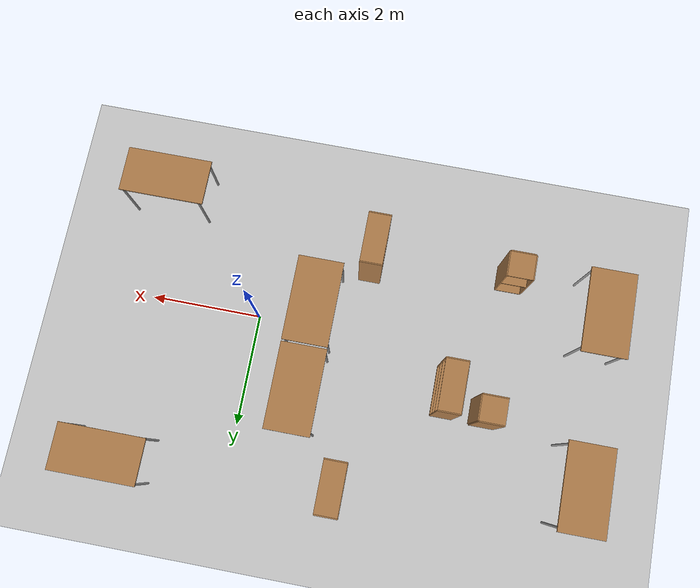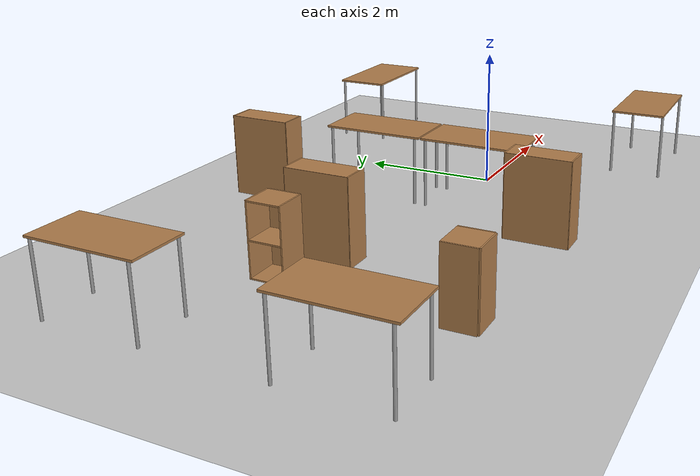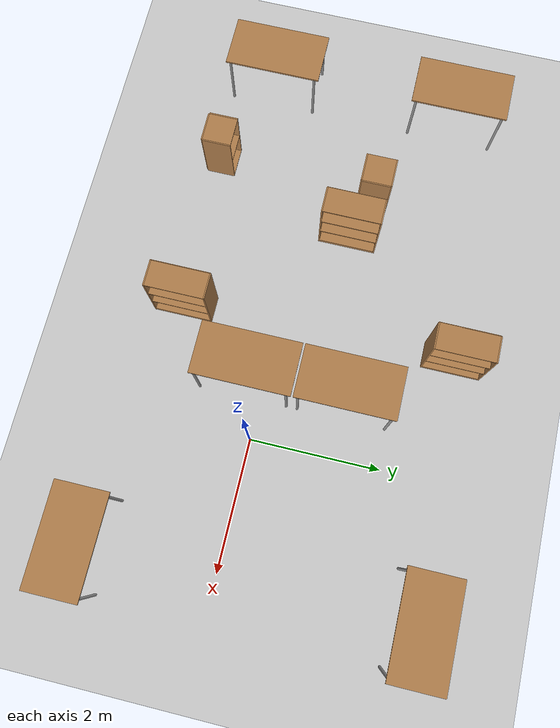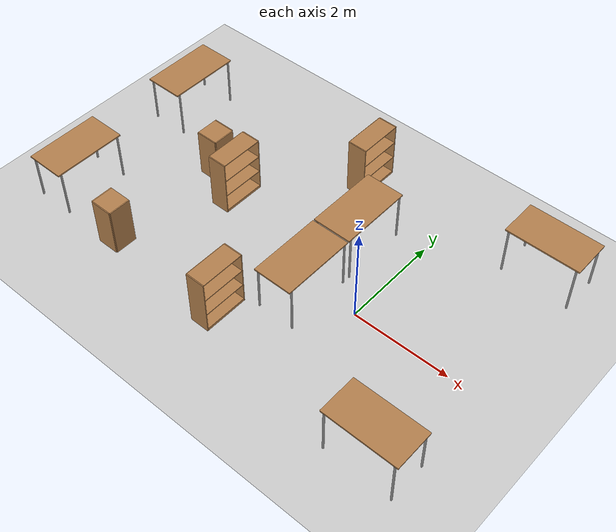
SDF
<sdf version="1.5">
 <world name="default">
  <model name="ground_plane">
   <static>1</static>
   <link name="link">
    <collision name="collision">
     <geometry><plane><normal>0 0 1</normal><size>100 100</size></plane></geometry>
     <surface><friction><ode><mu>100</mu><mu2>50</mu2></ode></friction></surface>
    </collision>
    <visual name="visual">
     <cast_shadows>0</cast_shadows>
     <geometry><plane><normal>0 0 1</normal><size>100 100</size></plane></geometry>
     <material>
      <script><uri>file://media/materials/scripts/gazebo.material</uri><name>Gazebo/Grey</name></script>
     </material>
    </visual>
    <velocity_decay><linear>0</linear><angular>0</angular></velocity_decay>
   </link>
  </model>
  <model name="table">
   <static>1</static>
   <link name="link">
    <collision name="surface">
     <pose>0 0 1 0 -0 0</pose>
     <geometry><box><size>1.5 0.8 0.03</size></box></geometry>
     <surface><friction><ode><mu>0.6</mu><mu2>0.6</mu2></ode></friction></surface>
    </collision>
    <visual name="visual1">
     <pose>0 0 1 0 -0 0</pose>
     <geometry><box><size>1.5 0.8 0.03</size></box></geometry>
     <material>
      <script><uri>file://media/materials/scripts/gazebo.material</uri><name>Gazebo/Wood</name></script>
     </material>
    </visual>
    <collision name="front_left_leg">
     <pose>0.68 0.38 0.5 0 -0 0</pose>
     <geometry><cylinder><radius>0.02</radius><length>1</length></cylinder></geometry>
    </collision>
    <visual name="front_left_leg">
     <pose>0.68 0.38 0.5 0 -0 0</pose>
     <geometry><cylinder><radius>0.02</radius><length>1</length></cylinder></geometry>
     <material>
      <script><uri>file://media/materials/scripts/gazebo.material</uri><name>Gazebo/Grey</name></script>
     </material>
    </visual>
    <collision name="front_right_leg">
     <pose>0.68 -0.38 0.5 0 -0 0</pose>
     <geometry><cylinder><radius>0.02</radius><length>1</length></cylinder></geometry>
    </collision>
    <visual name="front_right_leg">
     <pose>0.68 -0.38 0.5 0 -0 0</pose>
     <geometry><cylinder><radius>0.02</radius><length>1</length></cylinder></geometry>
     <material>
      <script><uri>file://media/materials/scripts/gazebo.material</uri><name>Gazebo/Grey</name></script>
     </material>
    </visual>
    <collision name="back_right_leg">
     <pose>-0.68 -0.38 0.5 0 -0 0</pose>
     <geometry><cylinder><radius>0.02</radius><length>1</length></cylinder></geometry>
    </collision>
    <visual name="back_right_leg">
     <pose>-0.68 -0.38 0.5 0 -0 0</pose>
     <geometry><cylinder><radius>0.02</radius><length>1</length></cylinder></geometry>
     <material>
      <script><uri>file://media/materials/scripts/gazebo.material</uri><name>Gazebo/Grey</name></script>
     </material>
    </visual>
    <collision name="back_left_leg">
     <pose>-0.68 0.38 0.5 0 -0 0</pose>
     <geometry><cylinder><radius>0.02</radius><length>1</length></cylinder></geometry>
    </collision>
    <visual name="back_left_leg">
     <pose>-0.68 0.38 0.5 0 -0 0</pose>
     <geometry><cylinder><radius>0.02</radius><length>1</length></cylinder></geometry>
     <material>
      <script><uri>file://media/materials/scripts/gazebo.material</uri><name>Gazebo/Grey</name></script>
     </material>
    </visual>
    <velocity_decay><linear>0</linear><angular>0</angular></velocity_decay>
   </link>
   <pose>-6 -1 0 0 -0 1.57</pose>
  </model>
  <model name="table_0">
   <static>1</static>
   <link name="link">
    <collision name="surface">
     <pose>0 0 1 0 -0 0</pose>
     <geometry><box><size>1.5 0.8 0.03</size></box></geometry>
     <surface><friction><ode><mu>0.6</mu><mu2>0.6</mu2></ode></friction></surface>
    </collision>
    <visual name="visual1">
     <pose>0 0 1 0 -0 0</pose>
     <geometry><box><size>1.5 0.8 0.03</size></box></geometry>
     <material>
      <script><uri>file://media/materials/scripts/gazebo.material</uri><name>Gazebo/Wood</name></script>
     </material>
    </visual>
    <collision name="front_left_leg">
     <pose>0.68 0.38 0.5 0 -0 0</pose>
     <geometry><cylinder><radius>0.02</radius><length>1</length></cylinder></geometry>
    </collision>
    <visual name="front_left_leg">
     <pose>0.68 0.38 0.5 0 -0 0</pose>
     <geometry><cylinder><radius>0.02</radius><length>1</length></cylinder></geometry>
     <material>
      <script><uri>file://media/materials/scripts/gazebo.material</uri><name>Gazebo/Grey</name></script>
     </material>
    </visual>
    <collision name="front_right_leg">
     <pose>0.68 -0.38 0.5 0 -0 0</pose>
     <geometry><cylinder><radius>0.02</radius><length>1</length></cylinder></geometry>
    </collision>
    <visual name="front_right_leg">
     <pose>0.68 -0.38 0.5 0 -0 0</pose>
     <geometry><cylinder><radius>0.02</radius><length>1</length></cylinder></geometry>
     <material>
      <script><uri>file://media/materials/scripts/gazebo.material</uri><name>Gazebo/Grey</name></script>
     </material>
    </visual>
    <collision name="back_right_leg">
     <pose>-0.68 -0.38 0.5 0 -0 0</pose>
     <geometry><cylinder><radius>0.02</radius><length>1</length></cylinder></geometry>
    </collision>
    <visual name="back_right_leg">
     <pose>-0.68 -0.38 0.5 0 -0 0</pose>
     <geometry><cylinder><radius>0.02</radius><length>1</length></cylinder></geometry>
     <material>
      <script><uri>file://media/materials/scripts/gazebo.material</uri><name>Gazebo/Grey</name></script>
     </material>
    </visual>
    <collision name="back_left_leg">
     <pose>-0.68 0.38 0.5 0 -0 0</pose>
     <geometry><cylinder><radius>0.02</radius><length>1</length></cylinder></geometry>
    </collision>
    <visual name="back_left_leg">
     <pose>-0.68 0.38 0.5 0 -0 0</pose>
     <geometry><cylinder><radius>0.02</radius><length>1</length></cylinder></geometry>
     <material>
      <script><uri>file://media/materials/scripts/gazebo.material</uri><name>Gazebo/Grey</name></script>
     </material>
    </visual>
    <velocity_decay><linear>0</linear><angular>0</angular></velocity_decay>
   </link>
   <pose>-6 2 0 0 -0 1.57</pose>
  </model>
  <model name="bookshelf_0">
   <static>1</static>
   <link name="link">
    <inertial><mass>1</mass></inertial>
    <collision name="back">
     <pose>0 0.005 0.6 0 -0 0</pose>
     <geometry><box><size>0.9 0.01 1.2</size></box></geometry>
    </collision>
    <visual name="visual1">
     <pose>0 0.005 0.6 0 -0 0</pose>
     <geometry><box><size>0.9 0.01 1.2</size></box></geometry>
     <material>
      <script><uri>file://media/materials/scripts/gazebo.material</uri><name>Gazebo/Wood</name></script>
     </material>
    </visual>
    <collision name="left_side">
     <pose>0.45 -0.195 0.6 0 -0 0</pose>
     <geometry><box><size>0.02 0.4 1.2</size></box></geometry>
    </collision>
    <visual name="visual2">
     <pose>0.45 -0.195 0.6 0 -0 0</pose>
     <geometry><box><size>0.02 0.4 1.2</size></box></geometry>
     <material>
      <script><uri>file://media/materials/scripts/gazebo.material</uri><name>Gazebo/Wood</name></script>
     </material>
    </visual>
    <collision name="right_side">
     <pose>-0.45 -0.195 0.6 0 -0 0</pose>
     <geometry><box><size>0.02 0.4 1.2</size></box></geometry>
    </collision>
    <visual name="visual3">
     <pose>-0.45 -0.195 0.6 0 -0 0</pose>
     <geometry><box><size>0.02 0.4 1.2</size></box></geometry>
     <material>
      <script><uri>file://media/materials/scripts/gazebo.material</uri><name>Gazebo/Wood</name></script>
     </material>
    </visual>
    <collision name="bottom">
     <pose>0 -0.195 0.03 0 -0 0</pose>
     <geometry><box><size>0.88 0.4 0.06</size></box></geometry>
    </collision>
    <visual name="visual4">
     <pose>0 -0.195 0.03 0 -0 0</pose>
     <geometry><box><size>0.88 0.4 0.06</size></box></geometry>
     <material>
      <script><uri>file://media/materials/scripts/gazebo.material</uri><name>Gazebo/Wood</name></script>
     </material>
    </visual>
    <collision name="top">
     <pose>0 -0.195 1.19 0 -0 0</pose>
     <geometry><box><size>0.88 0.4 0.02</size></box></geometry>
    </collision>
    <visual name="visual5">
     <pose>0 -0.195 1.19 0 -0 0</pose>
     <geometry><box><size>0.88 0.4 0.02</size></box></geometry>
     <material>
      <script><uri>file://media/materials/scripts/gazebo.material</uri><name>Gazebo/Wood</name></script>
     </material>
    </visual>
    <collision name="low_shelf">
     <pose>0 -0.195 0.43 0 -0 0</pose>
     <geometry><box><size>0.88 0.4 0.02</size></box></geometry>
    </collision>
    <visual name="visual6">
     <pose>0 -0.195 0.43 0 -0 0</pose>
     <geometry><box><size>0.88 0.4 0.02</size></box></geometry>
     <material>
      <script><uri>file://media/materials/scripts/gazebo.material</uri><name>Gazebo/Wood</name></script>
     </material>
    </visual>
    <collision name="high_shelf">
     <pose>0 -0.195 0.8 0 -0 0</pose>
     <geometry><box><size>0.88 0.4 0.02</size></box></geometry>
    </collision>
    <visual name="visual7">
     <pose>0 -0.195 0.8 0 -0 0</pose>
     <geometry><box><size>0.88 0.4 0.02</size></box></geometry>
     <material>
      <script><uri>file://media/materials/scripts/gazebo.material</uri><name>Gazebo/Wood</name></script>
     </material>
    </visual>
    <velocity_decay><linear>0</linear><angular>0</angular></velocity_decay>
   </link>
   <pose>-3.76364 0.752676 0 0 -0 1.57</pose>
  </model>
  <model name="cabinet">
   <static>1</static>
   <link name="cabinet_bottom_plate">
    <inertial>
     <pose>0 0 -1 0 -0 0</pose>
     <inertia><ixx>2.05</ixx><ixy>0</ixy><ixz>0</ixz><iyy>2.05</iyy><iyz>0</iyz><izz>2.05</izz></inertia>
     <mass>25</mass>
    </inertial>
    <collision name="cabinet_bottom_plate_geom">
     <pose>0 0 0.01 0 -0 0</pose>
     <geometry><box><size>0.45 0.45 0.02</size></box></geometry>
    </collision>
    <visual name="cabinet_bottom_plate_geom_visual">
     <pose>0 0 0.01 0 -0 0</pose>
     <geometry><box><size>0.45 0.45 0.02</size></box></geometry>
     <material>
      <script><uri>file://media/materials/scripts/gazebo.material</uri><name>Gazebo/Wood</name></script>
     </material>
    </visual>
    <collision name="cabinet_bottom_plate_geom_cabinet_back_plate">
     <pose>0.235 0 0.51 0 -0 0</pose>
     <geometry><box><size>0.02 0.45 1.02</size></box></geometry>
    </collision>
    <visual name="cabinet_bottom_plate_geom_cabinet_back_plate_visual">
     <pose>0.235 0 0.51 0 -0 0</pose>
     <geometry><box><size>0.02 0.45 1.02</size></box></geometry>
     <material>
      <script><uri>file://media/materials/scripts/gazebo.material</uri><name>Gazebo/Wood</name></script>
     </material>
    </visual>
    <collision name="cabinet_bottom_plate_geom_cabinet_left_plate">
     <pose>0 0.235 0.51 0 -0 0</pose>
     <geometry><box><size>0.45 0.02 1.02</size></box></geometry>
    </collision>
    <visual name="cabinet_bottom_plate_geom_cabinet_left_plate_visual">
     <pose>0 0.235 0.51 0 -0 0</pose>
     <geometry><box><size>0.45 0.02 1.02</size></box></geometry>
     <material>
      <script><uri>file://media/materials/scripts/gazebo.material</uri><name>Gazebo/Wood</name></script>
     </material>
    </visual>
    <collision name="cabinet_bottom_plate_geom_cabinet_middle_plate">
     <pose>0 0 0.51 0 -0 0</pose>
     <geometry><box><size>0.45 0.45 0.02</size></box></geometry>
    </collision>
    <visual name="cabinet_bottom_plate_geom_cabinet_middle_plate_visual">
     <pose>0 0 0.51 0 -0 0</pose>
     <geometry><box><size>0.45 0.45 0.02</size></box></geometry>
     <material>
      <script><uri>file://media/materials/scripts/gazebo.material</uri><name>Gazebo/Wood</name></script>
     </material>
    </visual>
    <collision name="cabinet_bottom_plate_geom_cabinet_right_plate">
     <pose>0 -0.235 0.51 0 -0 0</pose>
     <geometry><box><size>0.45 0.02 1.02</size></box></geometry>
    </collision>
    <visual name="cabinet_bottom_plate_geom_cabinet_right_plate_visual">
     <pose>0 -0.235 0.51 0 -0 0</pose>
     <geometry><box><size>0.45 0.02 1.02</size></box></geometry>
     <material>
      <script><uri>file://media/materials/scripts/gazebo.material</uri><name>Gazebo/Wood</name></script>
     </material>
    </visual>
    <collision name="cabinet_bottom_plate_geom_cabinet_top_plate">
     <pose>0 0 1.01 0 -0 0</pose>
     <geometry><box><size>0.45 0.45 0.02</size></box></geometry>
    </collision>
    <visual name="cabinet_bottom_plate_geom_cabinet_top_plate_visual">
     <pose>0 0 1.01 0 -0 0</pose>
     <geometry><box><size>0.45 0.45 0.02</size></box></geometry>
     <material>
      <script><uri>file://media/materials/scripts/gazebo.material</uri><name>Gazebo/Wood</name></script>
     </material>
    </visual>
    <velocity_decay><linear>0</linear><angular>0</angular></velocity_decay>
   </link>
   <pose>-4.41546 -1.53797 0 0 0 -1.57</pose>
  </model>
  <model name="cabinet_1">
   <static>1</static>
   <link name="cabinet_bottom_plate">
    <inertial>
     <pose>0 0 -1 0 -0 0</pose>
     <inertia><ixx>2.05</ixx><ixy>0</ixy><ixz>0</ixz><iyy>2.05</iyy><iyz>0</iyz><izz>2.05</izz></inertia>
     <mass>25</mass>
    </inertial>
    <collision name="cabinet_bottom_plate_geom">
     <pose>0 0 0.01 0 -0 0</pose>
     <geometry><box><size>0.45 0.45 0.02</size></box></geometry>
    </collision>
    <visual name="cabinet_bottom_plate_geom_visual">
     <pose>0 0 0.01 0 -0 0</pose>
     <geometry><box><size>0.45 0.45 0.02</size></box></geometry>
     <material>
      <script><uri>file://media/materials/scripts/gazebo.material</uri><name>Gazebo/Wood</name></script>
     </material>
    </visual>
    <collision name="cabinet_bottom_plate_geom_cabinet_back_plate">
     <pose>0.235 0 0.51 0 -0 0</pose>
     <geometry><box><size>0.02 0.45 1.02</size></box></geometry>
    </collision>
    <visual name="cabinet_bottom_plate_geom_cabinet_back_plate_visual">
     <pose>0.235 0 0.51 0 -0 0</pose>
     <geometry><box><size>0.02 0.45 1.02</size></box></geometry>
     <material>
      <script><uri>file://media/materials/scripts/gazebo.material</uri><name>Gazebo/Wood</name></script>
     </material>
    </visual>
    <collision name="cabinet_bottom_plate_geom_cabinet_left_plate">
     <pose>0 0.235 0.51 0 -0 0</pose>
     <geometry><box><size>0.45 0.02 1.02</size></box></geometry>
    </collision>
    <visual name="cabinet_bottom_plate_geom_cabinet_left_plate_visual">
     <pose>0 0.235 0.51 0 -0 0</pose>
     <geometry><box><size>0.45 0.02 1.02</size></box></geometry>
     <material>
      <script><uri>file://media/materials/scripts/gazebo.material</uri><name>Gazebo/Wood</name></script>
     </material>
    </visual>
    <collision name="cabinet_bottom_plate_geom_cabinet_middle_plate">
     <pose>0 0 0.51 0 -0 0</pose>
     <geometry><box><size>0.45 0.45 0.02</size></box></geometry>
    </collision>
    <visual name="cabinet_bottom_plate_geom_cabinet_middle_plate_visual">
     <pose>0 0 0.51 0 -0 0</pose>
     <geometry><box><size>0.45 0.45 0.02</size></box></geometry>
     <material>
      <script><uri>file://media/materials/scripts/gazebo.material</uri><name>Gazebo/Wood</name></script>
     </material>
    </visual>
    <collision name="cabinet_bottom_plate_geom_cabinet_right_plate">
     <pose>0 -0.235 0.51 0 -0 0</pose>
     <geometry><box><size>0.45 0.02 1.02</size></box></geometry>
    </collision>
    <visual name="cabinet_bottom_plate_geom_cabinet_right_plate_visual">
     <pose>0 -0.235 0.51 0 -0 0</pose>
     <geometry><box><size>0.45 0.02 1.02</size></box></geometry>
     <material>
      <script><uri>file://media/materials/scripts/gazebo.material</uri><name>Gazebo/Wood</name></script>
     </material>
    </visual>
    <collision name="cabinet_bottom_plate_geom_cabinet_top_plate">
     <pose>0 0 1.01 0 -0 0</pose>
     <geometry><box><size>0.45 0.45 0.02</size></box></geometry>
    </collision>
    <visual name="cabinet_bottom_plate_geom_cabinet_top_plate_visual">
     <pose>0 0 1.01 0 -0 0</pose>
     <geometry><box><size>0.45 0.45 0.02</size></box></geometry>
     <material>
      <script><uri>file://media/materials/scripts/gazebo.material</uri><name>Gazebo/Wood</name></script>
     </material>
    </visual>
    <velocity_decay><linear>0</linear><angular>0</angular></velocity_decay>
   </link>
   <pose>-4.31158 1.00055 0 0 -0 0</pose>
  </model>
  <model name="table_3">
   <static>1</static>
   <link name="link">
    <collision name="surface">
     <pose>0 0 1 0 -0 0</pose>
     <geometry><box><size>1.5 0.8 0.03</size></box></geometry>
     <surface><friction><ode><mu>0.6</mu><mu2>0.6</mu2></ode></friction></surface>
    </collision>
    <visual name="visual1">
     <pose>0 0 1 0 -0 0</pose>
     <geometry><box><size>1.5 0.8 0.03</size></box></geometry>
     <material>
      <script><uri>file://media/materials/scripts/gazebo.material</uri><name>Gazebo/Wood</name></script>
     </material>
    </visual>
    <collision name="front_left_leg">
     <pose>0.68 0.38 0.5 0 -0 0</pose>
     <geometry><cylinder><radius>0.02</radius><length>1</length></cylinder></geometry>
    </collision>
    <visual name="front_left_leg">
     <pose>0.68 0.38 0.5 0 -0 0</pose>
     <geometry><cylinder><radius>0.02</radius><length>1</length></cylinder></geometry>
     <material>
      <script><uri>file://media/materials/scripts/gazebo.material</uri><name>Gazebo/Grey</name></script>
     </material>
    </visual>
    <collision name="front_right_leg">
     <pose>0.68 -0.38 0.5 0 -0 0</pose>
     <geometry><cylinder><radius>0.02</radius><length>1</length></cylinder></geometry>
    </collision>
    <visual name="front_right_leg">
     <pose>0.68 -0.38 0.5 0 -0 0</pose>
     <geometry><cylinder><radius>0.02</radius><length>1</length></cylinder></geometry>
     <material>
      <script><uri>file://media/materials/scripts/gazebo.material</uri><name>Gazebo/Grey</name></script>
     </material>
    </visual>
    <collision name="back_right_leg">
     <pose>-0.68 -0.38 0.5 0 -0 0</pose>
     <geometry><cylinder><radius>0.02</radius><length>1</length></cylinder></geometry>
    </collision>
    <visual name="back_right_leg">
     <pose>-0.68 -0.38 0.5 0 -0 0</pose>
     <geometry><cylinder><radius>0.02</radius><length>1</length></cylinder></geometry>
     <material>
      <script><uri>file://media/materials/scripts/gazebo.material</uri><name>Gazebo/Grey</name></script>
     </material>
    </visual>
    <collision name="back_left_leg">
     <pose>-0.68 0.38 0.5 0 -0 0</pose>
     <geometry><cylinder><radius>0.02</radius><length>1</length></cylinder></geometry>
    </collision>
    <visual name="back_left_leg">
     <pose>-0.68 0.38 0.5 0 -0 0</pose>
     <geometry><cylinder><radius>0.02</radius><length>1</length></cylinder></geometry>
     <material>
      <script><uri>file://media/materials/scripts/gazebo.material</uri><name>Gazebo/Grey</name></script>
     </material>
    </visual>
    <velocity_decay><linear>0</linear><angular>0</angular></velocity_decay>
   </link>
   <pose>2 -2 0 0 -0 0</pose>
  </model>
  <model name="table_4">
   <static>1</static>
   <link name="link">
    <collision name="surface">
     <pose>0 0 1 0 -0 0</pose>
     <geometry><box><size>1.5 0.8 0.03</size></box></geometry>
     <surface><friction><ode><mu>0.6</mu><mu2>0.6</mu2></ode></friction></surface>
    </collision>
    <visual name="visual1">
     <pose>0 0 1 0 -0 0</pose>
     <geometry><box><size>1.5 0.8 0.03</size></box></geometry>
     <material>
      <script><uri>file://media/materials/scripts/gazebo.material</uri><name>Gazebo/Wood</name></script>
     </material>
    </visual>
    <collision name="front_left_leg">
     <pose>0.68 0.38 0.5 0 -0 0</pose>
     <geometry><cylinder><radius>0.02</radius><length>1</length></cylinder></geometry>
    </collision>
    <visual name="front_left_leg">
     <pose>0.68 0.38 0.5 0 -0 0</pose>
     <geometry><cylinder><radius>0.02</radius><length>1</length></cylinder></geometry>
     <material>
      <script><uri>file://media/materials/scripts/gazebo.material</uri><name>Gazebo/Grey</name></script>
     </material>
    </visual>
    <collision name="front_right_leg">
     <pose>0.68 -0.38 0.5 0 -0 0</pose>
     <geometry><cylinder><radius>0.02</radius><length>1</length></cylinder></geometry>
    </collision>
    <visual name="front_right_leg">
     <pose>0.68 -0.38 0.5 0 -0 0</pose>
     <geometry><cylinder><radius>0.02</radius><length>1</length></cylinder></geometry>
     <material>
      <script><uri>file://media/materials/scripts/gazebo.material</uri><name>Gazebo/Grey</name></script>
     </material>
    </visual>
    <collision name="back_right_leg">
     <pose>-0.68 -0.38 0.5 0 -0 0</pose>
     <geometry><cylinder><radius>0.02</radius><length>1</length></cylinder></geometry>
    </collision>
    <visual name="back_right_leg">
     <pose>-0.68 -0.38 0.5 0 -0 0</pose>
     <geometry><cylinder><radius>0.02</radius><length>1</length></cylinder></geometry>
     <material>
      <script><uri>file://media/materials/scripts/gazebo.material</uri><name>Gazebo/Grey</name></script>
     </material>
    </visual>
    <collision name="back_left_leg">
     <pose>-0.68 0.38 0.5 0 -0 0</pose>
     <geometry><cylinder><radius>0.02</radius><length>1</length></cylinder></geometry>
    </collision>
    <visual name="back_left_leg">
     <pose>-0.68 0.38 0.5 0 -0 0</pose>
     <geometry><cylinder><radius>0.02</radius><length>1</length></cylinder></geometry>
     <material>
      <script><uri>file://media/materials/scripts/gazebo.material</uri><name>Gazebo/Grey</name></script>
     </material>
    </visual>
    <velocity_decay><linear>0</linear><angular>0</angular></velocity_decay>
   </link>
   <pose>2 2.92871 0 0 -0 0</pose>
  </model>
  <model name="table_5">
   <static>1</static>
   <link name="link">
    <collision name="surface">
     <pose>0 0 1 0 -0 0</pose>
     <geometry><box><size>1.5 0.8 0.03</size></box></geometry>
     <surface><friction><ode><mu>0.6</mu><mu2>0.6</mu2></ode></friction></surface>
    </collision>
    <visual name="visual1">
     <pose>0 0 1 0 -0 0</pose>
     <geometry><box><size>1.5 0.8 0.03</size></box></geometry>
     <material>
      <script><uri>file://media/materials/scripts/gazebo.material</uri><name>Gazebo/Wood</name></script>
     </material>
    </visual>
    <collision name="front_left_leg">
     <pose>0.68 0.38 0.5 0 -0 0</pose>
     <geometry><cylinder><radius>0.02</radius><length>1</length></cylinder></geometry>
    </collision>
    <visual name="front_left_leg">
     <pose>0.68 0.38 0.5 0 -0 0</pose>
     <geometry><cylinder><radius>0.02</radius><length>1</length></cylinder></geometry>
     <material>
      <script><uri>file://media/materials/scripts/gazebo.material</uri><name>Gazebo/Grey</name></script>
     </material>
    </visual>
    <collision name="front_right_leg">
     <pose>0.68 -0.38 0.5 0 -0 0</pose>
     <geometry><cylinder><radius>0.02</radius><length>1</length></cylinder></geometry>
    </collision>
    <visual name="front_right_leg">
     <pose>0.68 -0.38 0.5 0 -0 0</pose>
     <geometry><cylinder><radius>0.02</radius><length>1</length></cylinder></geometry>
     <material>
      <script><uri>file://media/materials/scripts/gazebo.material</uri><name>Gazebo/Grey</name></script>
     </material>
    </visual>
    <collision name="back_right_leg">
     <pose>-0.68 -0.38 0.5 0 -0 0</pose>
     <geometry><cylinder><radius>0.02</radius><length>1</length></cylinder></geometry>
    </collision>
    <visual name="back_right_leg">
     <pose>-0.68 -0.38 0.5 0 -0 0</pose>
     <geometry><cylinder><radius>0.02</radius><length>1</length></cylinder></geometry>
     <material>
      <script><uri>file://media/materials/scripts/gazebo.material</uri><name>Gazebo/Grey</name></script>
     </material>
    </visual>
    <collision name="back_left_leg">
     <pose>-0.68 0.38 0.5 0 -0 0</pose>
     <geometry><cylinder><radius>0.02</radius><length>1</length></cylinder></geometry>
    </collision>
    <visual name="back_left_leg">
     <pose>-0.68 0.38 0.5 0 -0 0</pose>
     <geometry><cylinder><radius>0.02</radius><length>1</length></cylinder></geometry>
     <material>
      <script><uri>file://media/materials/scripts/gazebo.material</uri><name>Gazebo/Grey</name></script>
     </material>
    </visual>
    <velocity_decay><linear>0</linear><angular>0</angular></velocity_decay>
   </link>
   <pose>-0.999414 -0.264536 0 0 -0 1.57</pose>
  </model>
  <model name="table_6">
   <static>1</static>
   <link name="link">
    <collision name="surface">
     <pose>0 0 1 0 -0 0</pose>
     <geometry><box><size>1.5 0.8 0.03</size></box></geometry>
     <surface><friction><ode><mu>0.6</mu><mu2>0.6</mu2></ode></friction></surface>
    </collision>
    <visual name="visual1">
     <pose>0 0 1 0 -0 0</pose>
     <geometry><box><size>1.5 0.8 0.03</size></box></geometry>
     <material>
      <script><uri>file://media/materials/scripts/gazebo.material</uri><name>Gazebo/Wood</name></script>
     </material>
    </visual>
    <collision name="front_left_leg">
     <pose>0.68 0.38 0.5 0 -0 0</pose>
     <geometry><cylinder><radius>0.02</radius><length>1</length></cylinder></geometry>
    </collision>
    <visual name="front_left_leg">
     <pose>0.68 0.38 0.5 0 -0 0</pose>
     <geometry><cylinder><radius>0.02</radius><length>1</length></cylinder></geometry>
     <material>
      <script><uri>file://media/materials/scripts/gazebo.material</uri><name>Gazebo/Grey</name></script>
     </material>
    </visual>
    <collision name="front_right_leg">
     <pose>0.68 -0.38 0.5 0 -0 0</pose>
     <geometry><cylinder><radius>0.02</radius><length>1</length></cylinder></geometry>
    </collision>
    <visual name="front_right_leg">
     <pose>0.68 -0.38 0.5 0 -0 0</pose>
     <geometry><cylinder><radius>0.02</radius><length>1</length></cylinder></geometry>
     <material>
      <script><uri>file://media/materials/scripts/gazebo.material</uri><name>Gazebo/Grey</name></script>
     </material>
    </visual>
    <collision name="back_right_leg">
     <pose>-0.68 -0.38 0.5 0 -0 0</pose>
     <geometry><cylinder><radius>0.02</radius><length>1</length></cylinder></geometry>
    </collision>
    <visual name="back_right_leg">
     <pose>-0.68 -0.38 0.5 0 -0 0</pose>
     <geometry><cylinder><radius>0.02</radius><length>1</length></cylinder></geometry>
     <material>
      <script><uri>file://media/materials/scripts/gazebo.material</uri><name>Gazebo/Grey</name></script>
     </material>
    </visual>
    <collision name="back_left_leg">
     <pose>-0.68 0.38 0.5 0 -0 0</pose>
     <geometry><cylinder><radius>0.02</radius><length>1</length></cylinder></geometry>
    </collision>
    <visual name="back_left_leg">
     <pose>-0.68 0.38 0.5 0 -0 0</pose>
     <geometry><cylinder><radius>0.02</radius><length>1</length></cylinder></geometry>
     <material>
      <script><uri>file://media/materials/scripts/gazebo.material</uri><name>Gazebo/Grey</name></script>
     </material>
    </visual>
    <velocity_decay><linear>0</linear><angular>0</angular></velocity_decay>
   </link>
   <pose>-0.999787 1.2674 0 0 -0 1.57</pose>
  </model>
  <model name="bookshelf_1">
   <static>1</static>
   <link name="link">
    <inertial><mass>1</mass></inertial>
    <collision name="back">
     <pose>0 0.005 0.6 0 -0 0</pose>
     <geometry><box><size>0.9 0.01 1.2</size></box></geometry>
    </collision>
    <visual name="visual1">
     <pose>0 0.005 0.6 0 -0 0</pose>
     <geometry><box><size>0.9 0.01 1.2</size></box></geometry>
     <material>
      <script><uri>file://media/materials/scripts/gazebo.material</uri><name>Gazebo/Wood</name></script>
     </material>
    </visual>
    <collision name="left_side">
     <pose>0.45 -0.195 0.6 0 -0 0</pose>
     <geometry><box><size>0.02 0.4 1.2</size></box></geometry>
    </collision>
    <visual name="visual2">
     <pose>0.45 -0.195 0.6 0 -0 0</pose>
     <geometry><box><size>0.02 0.4 1.2</size></box></geometry>
     <material>
      <script><uri>file://media/materials/scripts/gazebo.material</uri><name>Gazebo/Wood</name></script>
     </material>
    </visual>
    <collision name="right_side">
     <pose>-0.45 -0.195 0.6 0 -0 0</pose>
     <geometry><box><size>0.02 0.4 1.2</size></box></geometry>
    </collision>
    <visual name="visual3">
     <pose>-0.45 -0.195 0.6 0 -0 0</pose>
     <geometry><box><size>0.02 0.4 1.2</size></box></geometry>
     <material>
      <script><uri>file://media/materials/scripts/gazebo.material</uri><name>Gazebo/Wood</name></script>
     </material>
    </visual>
    <collision name="bottom">
     <pose>0 -0.195 0.03 0 -0 0</pose>
     <geometry><box><size>0.88 0.4 0.06</size></box></geometry>
    </collision>
    <visual name="visual4">
     <pose>0 -0.195 0.03 0 -0 0</pose>
     <geometry><box><size>0.88 0.4 0.06</size></box></geometry>
     <material>
      <script><uri>file://media/materials/scripts/gazebo.material</uri><name>Gazebo/Wood</name></script>
     </material>
    </visual>
    <collision name="top">
     <pose>0 -0.195 1.19 0 -0 0</pose>
     <geometry><box><size>0.88 0.4 0.02</size></box></geometry>
    </collision>
    <visual name="visual5">
     <pose>0 -0.195 1.19 0 -0 0</pose>
     <geometry><box><size>0.88 0.4 0.02</size></box></geometry>
     <material>
      <script><uri>file://media/materials/scripts/gazebo.material</uri><name>Gazebo/Wood</name></script>
     </material>
    </visual>
    <collision name="low_shelf">
     <pose>0 -0.195 0.43 0 -0 0</pose>
     <geometry><box><size>0.88 0.4 0.02</size></box></geometry>
    </collision>
    <visual name="visual6">
     <pose>0 -0.195 0.43 0 -0 0</pose>
     <geometry><box><size>0.88 0.4 0.02</size></box></geometry>
     <material>
      <script><uri>file://media/materials/scripts/gazebo.material</uri><name>Gazebo/Wood</name></script>
     </material>
    </visual>
    <collision name="high_shelf">
     <pose>0 -0.195 0.8 0 -0 0</pose>
     <geometry><box><size>0.88 0.4 0.02</size></box></geometry>
    </collision>
    <visual name="visual7">
     <pose>0 -0.195 0.8 0 -0 0</pose>
     <geometry><box><size>0.88 0.4 0.02</size></box></geometry>
     <material>
      <script><uri>file://media/materials/scripts/gazebo.material</uri><name>Gazebo/Wood</name></script>
     </material>
    </visual>
    <velocity_decay><linear>0</linear><angular>0</angular></velocity_decay>
   </link>
   <pose>-2.08987 2.75188 0 0 -0 1.57</pose>
  </model>
  <model name="bookshelf_2">
   <static>1</static>
   <link name="link">
    <inertial><mass>1</mass></inertial>
    <collision name="back">
     <pose>0 0.005 0.6 0 -0 0</pose>
     <geometry><box><size>0.9 0.01 1.2</size></box></geometry>
    </collision>
    <visual name="visual1">
     <pose>0 0.005 0.6 0 -0 0</pose>
     <geometry><box><size>0.9 0.01 1.2</size></box></geometry>
     <material>
      <script><uri>file://media/materials/scripts/gazebo.material</uri><name>Gazebo/Wood</name></script>
     </material>
    </visual>
    <collision name="left_side">
     <pose>0.45 -0.195 0.6 0 -0 0</pose>
     <geometry><box><size>0.02 0.4 1.2</size></box></geometry>
    </collision>
    <visual name="visual2">
     <pose>0.45 -0.195 0.6 0 -0 0</pose>
     <geometry><box><size>0.02 0.4 1.2</size></box></geometry>
     <material>
      <script><uri>file://media/materials/scripts/gazebo.material</uri><name>Gazebo/Wood</name></script>
     </material>
    </visual>
    <collision name="right_side">
     <pose>-0.45 -0.195 0.6 0 -0 0</pose>
     <geometry><box><size>0.02 0.4 1.2</size></box></geometry>
    </collision>
    <visual name="visual3">
     <pose>-0.45 -0.195 0.6 0 -0 0</pose>
     <geometry><box><size>0.02 0.4 1.2</size></box></geometry>
     <material>
      <script><uri>file://media/materials/scripts/gazebo.material</uri><name>Gazebo/Wood</name></script>
     </material>
    </visual>
    <collision name="bottom">
     <pose>0 -0.195 0.03 0 -0 0</pose>
     <geometry><box><size>0.88 0.4 0.06</size></box></geometry>
    </collision>
    <visual name="visual4">
     <pose>0 -0.195 0.03 0 -0 0</pose>
     <geometry><box><size>0.88 0.4 0.06</size></box></geometry>
     <material>
      <script><uri>file://media/materials/scripts/gazebo.material</uri><name>Gazebo/Wood</name></script>
     </material>
    </visual>
    <collision name="top">
     <pose>0 -0.195 1.19 0 -0 0</pose>
     <geometry><box><size>0.88 0.4 0.02</size></box></geometry>
    </collision>
    <visual name="visual5">
     <pose>0 -0.195 1.19 0 -0 0</pose>
     <geometry><box><size>0.88 0.4 0.02</size></box></geometry>
     <material>
      <script><uri>file://media/materials/scripts/gazebo.material</uri><name>Gazebo/Wood</name></script>
     </material>
    </visual>
    <collision name="low_shelf">
     <pose>0 -0.195 0.43 0 -0 0</pose>
     <geometry><box><size>0.88 0.4 0.02</size></box></geometry>
    </collision>
    <visual name="visual6">
     <pose>0 -0.195 0.43 0 -0 0</pose>
     <geometry><box><size>0.88 0.4 0.02</size></box></geometry>
     <material>
      <script><uri>file://media/materials/scripts/gazebo.material</uri><name>Gazebo/Wood</name></script>
     </material>
    </visual>
    <collision name="high_shelf">
     <pose>0 -0.195 0.8 0 -0 0</pose>
     <geometry><box><size>0.88 0.4 0.02</size></box></geometry>
    </collision>
    <visual name="visual7">
     <pose>0 -0.195 0.8 0 -0 0</pose>
     <geometry><box><size>0.88 0.4 0.02</size></box></geometry>
     <material>
      <script><uri>file://media/materials/scripts/gazebo.material</uri><name>Gazebo/Wood</name></script>
     </material>
    </visual>
    <velocity_decay><linear>0</linear><angular>0</angular></velocity_decay>
   </link>
   <pose>-2.04869 -1.49429 0 0 -0 1.57</pose>
  </model>
 </world>
</sdf>
